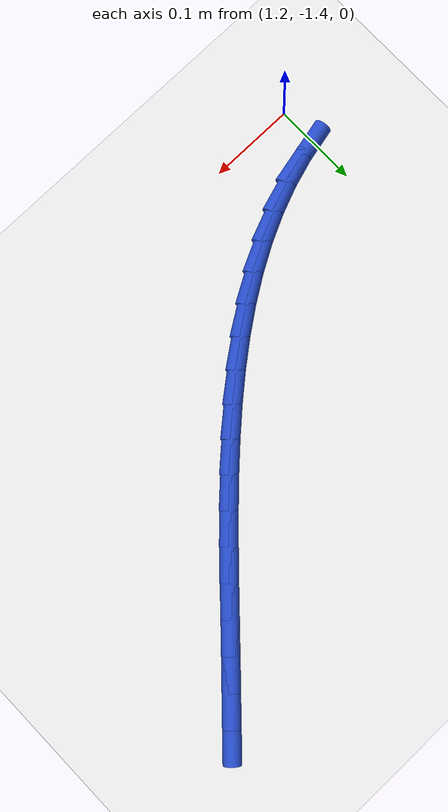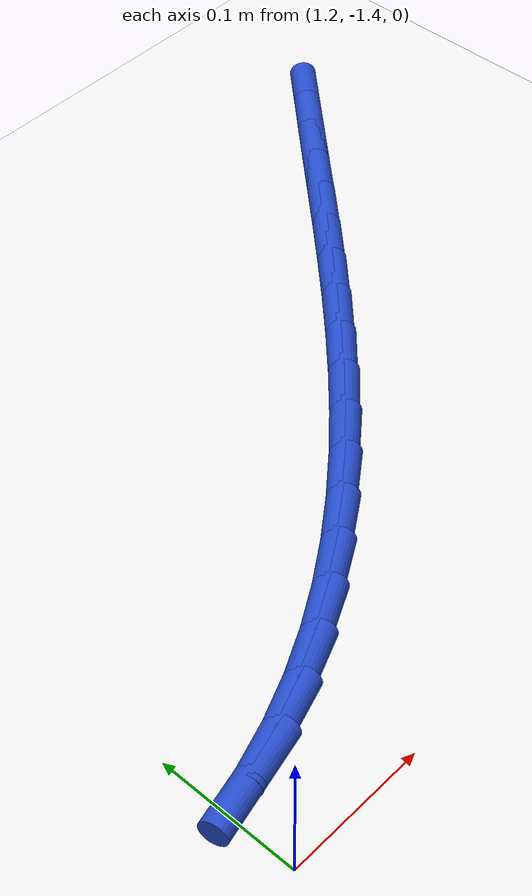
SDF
<sdf version="1.6">
 <world name="default">
  <model name="ground_plane">
   <static>1</static>
   <link name="link">
    <collision name="collision">
     <geometry><plane><normal>0 0 1</normal><size>100 100</size></plane></geometry>
     <surface><friction><ode><mu>100</mu><mu2>50</mu2></ode></friction></surface>
    </collision>
    <visual name="visual">
     <cast_shadows>0</cast_shadows>
     <geometry><plane><normal>0 0 1</normal><size>100 100</size></plane></geometry>
     <material>
      <script><uri>file://media/materials/scripts/gazebo.material</uri><name>Gazebo/WhiteGlow</name></script>
     </material>
    </visual>
   </link>
  </model>
  <model name="line">
   <link name="link_148">
    <pose>1.6964933264475897 -0.9617740379149073 0.01 0 1.57 0.8261357762197598</pose>
    <collision name="collision">
     <geometry><cylinder><radius>0.01</radius><length>0.08</length></cylinder></geometry>
    </collision>
    <visual name="visual">
     <material>
      <script><name>Gazebo/Blue</name><uri>file://media/materials/scripts/gazebo.material</uri></script>
     </material>
     <geometry><cylinder><radius>0.01</radius><length>0.08</length></cylinder></geometry>
    </visual>
   </link>
   <link name="link_149">
    <pose>1.6720328365209498 -0.9883132854643508 0.01 0 1.57 0.8261080698953365</pose>
    <collision name="collision">
     <geometry><cylinder><radius>0.01</radius><length>0.08</length></cylinder></geometry>
    </collision>
    <visual name="visual">
     <material>
      <script><name>Gazebo/Blue</name><uri>file://media/materials/scripts/gazebo.material</uri></script>
     </material>
     <geometry><cylinder><radius>0.01</radius><length>0.08</length></cylinder></geometry>
    </visual>
   </link>
   <link name="link_150">
    <pose>1.6473360185868904 -1.0151074554759396 0.01 0 1.57 0.8283878773506081</pose>
    <collision name="collision">
     <geometry><cylinder><radius>0.01</radius><length>0.08</length></cylinder></geometry>
    </collision>
    <visual name="visual">
     <material>
      <script><name>Gazebo/Blue</name><uri>file://media/materials/scripts/gazebo.material</uri></script>
     </material>
     <geometry><cylinder><radius>0.01</radius><length>0.08</length></cylinder></geometry>
    </visual>
   </link>
   <link name="link_151">
    <pose>1.6224248113363486 -1.042258169627914 0.01 0 1.57 0.8273405512775768</pose>
    <collision name="collision">
     <geometry><cylinder><radius>0.01</radius><length>0.08</length></cylinder></geometry>
    </collision>
    <visual name="visual">
     <material>
      <script><name>Gazebo/Blue</name><uri>file://media/materials/scripts/gazebo.material</uri></script>
     </material>
     <geometry><cylinder><radius>0.01</radius><length>0.08</length></cylinder></geometry>
    </visual>
   </link>
   <link name="link_152">
    <pose>1.597260924075347 -1.0696266841806144 0.01 0 1.57 0.8213123922237321</pose>
    <collision name="collision">
     <geometry><cylinder><radius>0.01</radius><length>0.08</length></cylinder></geometry>
    </collision>
    <visual name="visual">
     <material>
      <script><name>Gazebo/Blue</name><uri>file://media/materials/scripts/gazebo.material</uri></script>
     </material>
     <geometry><cylinder><radius>0.01</radius><length>0.08</length></cylinder></geometry>
    </visual>
   </link>
   <link name="link_153">
    <pose>1.571787237730204 -1.096999114474998 0.01 0 1.57 0.8103316563704391</pose>
    <collision name="collision">
     <geometry><cylinder><radius>0.01</radius><length>0.08</length></cylinder></geometry>
    </collision>
    <visual name="visual">
     <material>
      <script><name>Gazebo/Blue</name><uri>file://media/materials/scripts/gazebo.material</uri></script>
     </material>
     <geometry><cylinder><radius>0.01</radius><length>0.08</length></cylinder></geometry>
    </visual>
   </link>
   <link name="link_154">
    <pose>1.5459466268453426 -1.124161550382953 0.01 0 1.57 0.7943383397884851</pose>
    <collision name="collision">
     <geometry><cylinder><radius>0.01</radius><length>0.08</length></cylinder></geometry>
    </collision>
    <visual name="visual">
     <material>
      <script><name>Gazebo/Blue</name><uri>file://media/materials/scripts/gazebo.material</uri></script>
     </material>
     <geometry><cylinder><radius>0.01</radius><length>0.08</length></cylinder></geometry>
    </visual>
   </link>
   <link name="link_155">
    <pose>1.5196819659651872 -1.1509000817763666 0.01 0 1.57 0.7731913589781593</pose>
    <collision name="collision">
     <geometry><cylinder><radius>0.01</radius><length>0.08</length></cylinder></geometry>
    </collision>
    <visual name="visual">
     <material>
      <script><name>Gazebo/Blue</name><uri>file://media/materials/scripts/gazebo.material</uri></script>
     </material>
     <geometry><cylinder><radius>0.01</radius><length>0.08</length></cylinder></geometry>
    </visual>
   </link>
   <link name="link_156">
    <pose>1.4929361296341606 -1.1770007985271267 0.01 0 1.57 0.7466773012512766</pose>
    <collision name="collision">
     <geometry><cylinder><radius>0.01</radius><length>0.08</length></cylinder></geometry>
    </collision>
    <visual name="visual">
     <material>
      <script><name>Gazebo/Blue</name><uri>file://media/materials/scripts/gazebo.material</uri></script>
     </material>
     <geometry><cylinder><radius>0.01</radius><length>0.08</length></cylinder></geometry>
    </visual>
   </link>
   <link name="link_157">
    <pose>1.4656519923966882 -1.2022497905071194 0.01 0 1.57 0.7145220926665871</pose>
    <collision name="collision">
     <geometry><cylinder><radius>0.01</radius><length>0.08</length></cylinder></geometry>
    </collision>
    <visual name="visual">
     <material>
      <script><name>Gazebo/Blue</name><uri>file://media/materials/scripts/gazebo.material</uri></script>
     </material>
     <geometry><cylinder><radius>0.01</radius><length>0.08</length></cylinder></geometry>
    </visual>
   </link>
   <link name="link_158">
    <pose>1.4377724287971925 -1.2264331475882324 0.01 0 1.57 0.6764082002080507</pose>
    <collision name="collision">
     <geometry><cylinder><radius>0.01</radius><length>0.08</length></cylinder></geometry>
    </collision>
    <visual name="visual">
     <material>
      <script><name>Gazebo/Blue</name><uri>file://media/materials/scripts/gazebo.material</uri></script>
     </material>
     <geometry><cylinder><radius>0.01</radius><length>0.08</length></cylinder></geometry>
    </visual>
   </link>
   <link name="link_159">
    <pose>1.4092403133800984 -1.249336959642354 0.01 0 1.57 0.6320006737850337</pose>
    <collision name="collision">
     <geometry><cylinder><radius>0.01</radius><length>0.08</length></cylinder></geometry>
    </collision>
    <visual name="visual">
     <material>
      <script><name>Gazebo/Blue</name><uri>file://media/materials/scripts/gazebo.material</uri></script>
     </material>
     <geometry><cylinder><radius>0.01</radius><length>0.08</length></cylinder></geometry>
    </visual>
   </link>
   <link name="link_160">
    <pose>1.3799985206898286 -1.2707473165413707 0.01 0 1.57 0.5809857707517279</pose>
    <collision name="collision">
     <geometry><cylinder><radius>0.01</radius><length>0.08</length></cylinder></geometry>
    </collision>
    <visual name="visual">
     <material>
      <script><name>Gazebo/Blue</name><uri>file://media/materials/scripts/gazebo.material</uri></script>
     </material>
     <geometry><cylinder><radius>0.01</radius><length>0.08</length></cylinder></geometry>
    </visual>
   </link>
   <link name="link_161">
    <pose>1.3499899252708083 -1.2904503081571697 0.01 0 1.57 0.5231255356203139</pose>
    <collision name="collision">
     <geometry><cylinder><radius>0.01</radius><length>0.08</length></cylinder></geometry>
    </collision>
    <visual name="visual">
     <material>
      <script><name>Gazebo/Blue</name><uri>file://media/materials/scripts/gazebo.material</uri></script>
     </material>
     <geometry><cylinder><radius>0.01</radius><length>0.08</length></cylinder></geometry>
    </visual>
   </link>
   <link name="link_162">
    <pose>1.3191574016674608 -1.3082320243616383 0.01 0 1.57 0.4583296331381683</pose>
    <collision name="collision">
     <geometry><cylinder><radius>0.01</radius><length>0.08</length></cylinder></geometry>
    </collision>
    <visual name="visual">
     <material>
      <script><name>Gazebo/Blue</name><uri>file://media/materials/scripts/gazebo.material</uri></script>
     </material>
     <geometry><cylinder><radius>0.01</radius><length>0.08</length></cylinder></geometry>
    </visual>
   </link>
   <link name="link_163">
    <pose>1.28744382442421 -1.3238785550266647 0.01 0 1.57 0.3867409001952364</pose>
    <collision name="collision">
     <geometry><cylinder><radius>0.01</radius><length>0.08</length></cylinder></geometry>
    </collision>
    <visual name="visual">
     <material>
      <script><name>Gazebo/Blue</name><uri>file://media/materials/scripts/gazebo.material</uri></script>
     </material>
     <geometry><cylinder><radius>0.01</radius><length>0.08</length></cylinder></geometry>
    </visual>
   </link>
   <link name="link_164">
    <pose>1.2547920680854798 -1.3371759900241353 0.01 0 1.57 0.30882299724552426</pose>
    <collision name="collision">
     <geometry><cylinder><radius>0.01</radius><length>0.08</length></cylinder></geometry>
    </collision>
    <visual name="visual">
     <material>
      <script><name>Gazebo/Blue</name><uri>file://media/materials/scripts/gazebo.material</uri></script>
     </material>
     <geometry><cylinder><radius>0.01</radius><length>0.08</length></cylinder></geometry>
    </visual>
   </link>
   <link name="link_165">
    <pose>1.2211450071956933 -1.3479104192259381 0.01 0 1.57 0.22545722885371267</pose>
    <collision name="collision">
     <geometry><cylinder><radius>0.01</radius><length>0.08</length></cylinder></geometry>
    </collision>
    <visual name="visual">
     <material>
      <script><name>Gazebo/Blue</name><uri>file://media/materials/scripts/gazebo.material</uri></script>
     </material>
     <geometry><cylinder><radius>0.01</radius><length>0.08</length></cylinder></geometry>
    </visual>
   </link>
  </model>
 </world>
</sdf>
